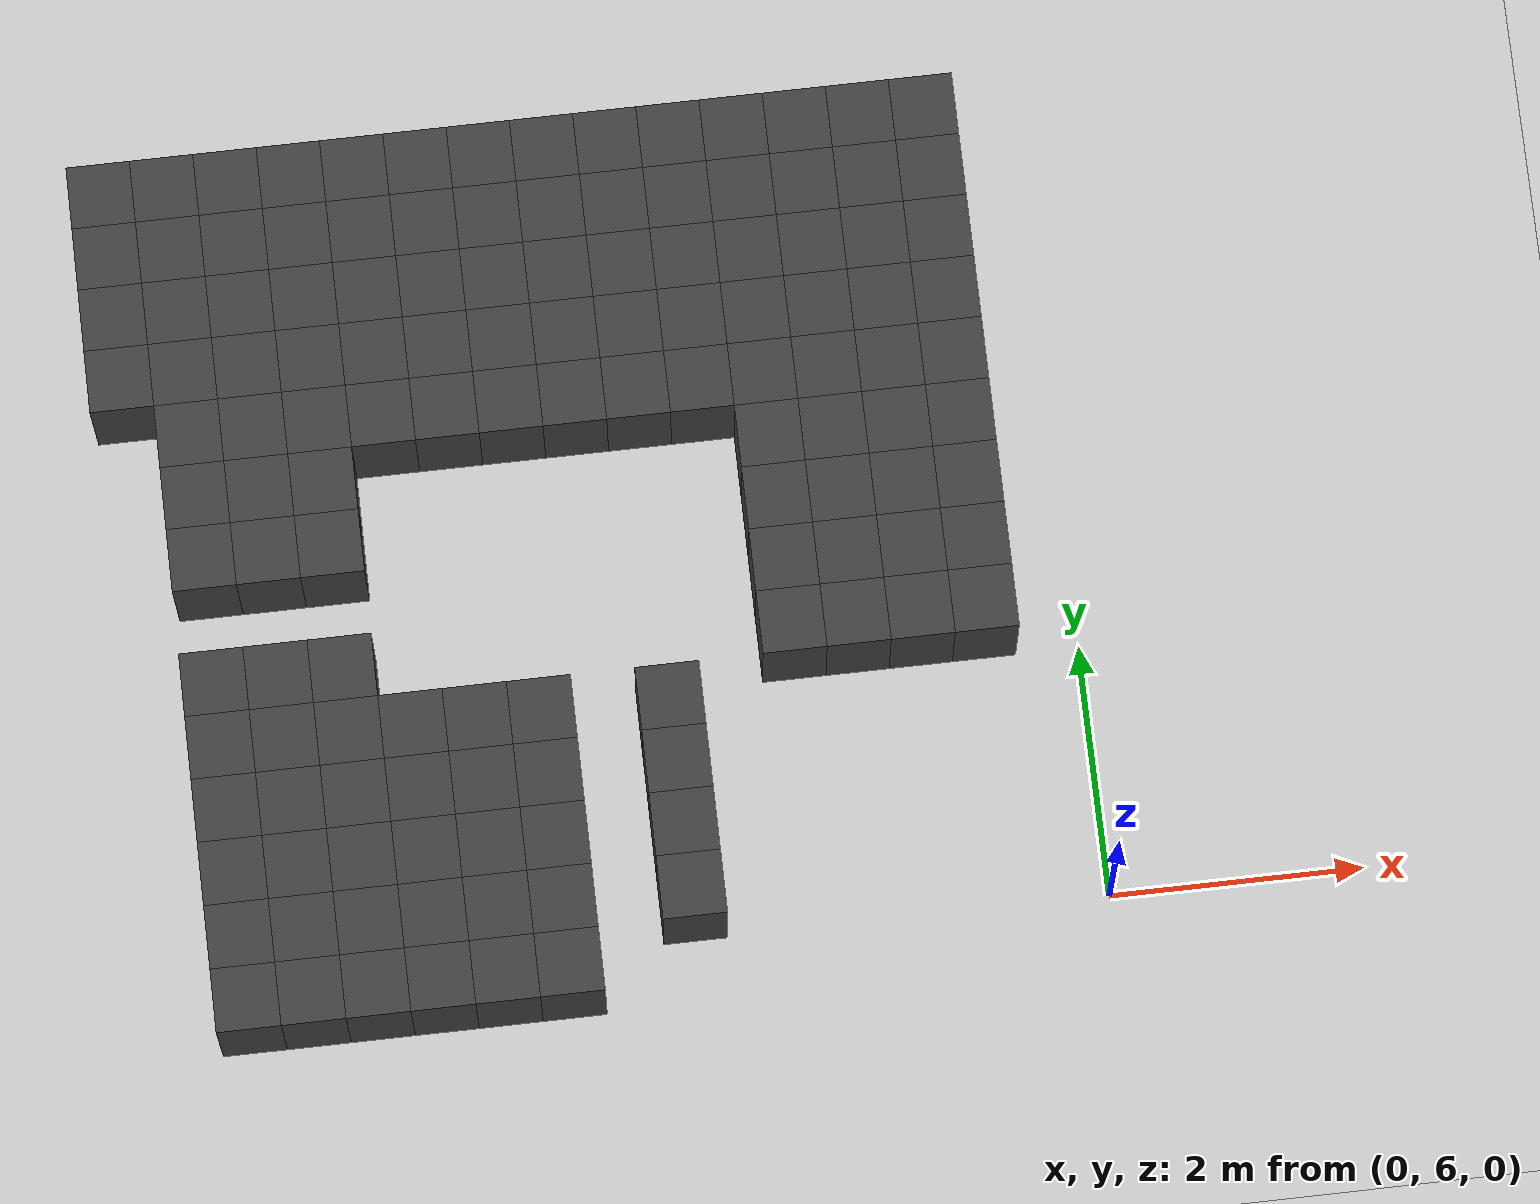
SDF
<sdf version="1.7">
 <world name="map_11515">
  <model name="ground_plane">
   <static>true</static>
   <link name="link">
    <collision name="collision">
     <geometry><plane><normal>0 0 1</normal><size>200 200</size></plane></geometry>
    </collision>
    <visual name="visual">
     <geometry><plane><normal>0 0 1</normal><size>200 200</size></plane></geometry>
     <material><ambient>0.8 0.8 0.8 1</ambient><diffuse>0.8 0.8 0.8 1</diffuse></material>
    </visual>
   </link>
  </model>
  <model name="maze_environment">
   <static>true</static>
   <link name="wall_10">
    <pose>-7.250 12.250 0.500 0 0 0</pose>
    <collision name="col"><geometry><box><size>0.5 0.5 1.0</size></box></geometry></collision>
    <visual name="vis">
     <geometry><box><size>0.5 0.5 1.0</size></box></geometry>
     <material><ambient>0.15 0.15 0.15 1</ambient><diffuse>0.25 0.25 0.25 1</diffuse></material>
    </visual>
   </link>
   <link name="wall_11">
    <pose>-6.750 12.250 0.500 0 0 0</pose>
    <collision name="col"><geometry><box><size>0.5 0.5 1.0</size></box></geometry></collision>
    <visual name="vis">
     <geometry><box><size>0.5 0.5 1.0</size></box></geometry>
     <material><ambient>0.15 0.15 0.15 1</ambient><diffuse>0.25 0.25 0.25 1</diffuse></material>
    </visual>
   </link>
   <link name="wall_12">
    <pose>-6.250 12.250 0.500 0 0 0</pose>
    <collision name="col"><geometry><box><size>0.5 0.5 1.0</size></box></geometry></collision>
    <visual name="vis">
     <geometry><box><size>0.5 0.5 1.0</size></box></geometry>
     <material><ambient>0.15 0.15 0.15 1</ambient><diffuse>0.25 0.25 0.25 1</diffuse></material>
    </visual>
   </link>
   <link name="wall_13">
    <pose>-5.750 12.250 0.500 0 0 0</pose>
    <collision name="col"><geometry><box><size>0.5 0.5 1.0</size></box></geometry></collision>
    <visual name="vis">
     <geometry><box><size>0.5 0.5 1.0</size></box></geometry>
     <material><ambient>0.15 0.15 0.15 1</ambient><diffuse>0.25 0.25 0.25 1</diffuse></material>
    </visual>
   </link>
   <link name="wall_14">
    <pose>-5.250 12.250 0.500 0 0 0</pose>
    <collision name="col"><geometry><box><size>0.5 0.5 1.0</size></box></geometry></collision>
    <visual name="vis">
     <geometry><box><size>0.5 0.5 1.0</size></box></geometry>
     <material><ambient>0.15 0.15 0.15 1</ambient><diffuse>0.25 0.25 0.25 1</diffuse></material>
    </visual>
   </link>
   <link name="wall_15">
    <pose>-4.750 12.250 0.500 0 0 0</pose>
    <collision name="col"><geometry><box><size>0.5 0.5 1.0</size></box></geometry></collision>
    <visual name="vis">
     <geometry><box><size>0.5 0.5 1.0</size></box></geometry>
     <material><ambient>0.15 0.15 0.15 1</ambient><diffuse>0.25 0.25 0.25 1</diffuse></material>
    </visual>
   </link>
   <link name="wall_16">
    <pose>-4.250 12.250 0.500 0 0 0</pose>
    <collision name="col"><geometry><box><size>0.5 0.5 1.0</size></box></geometry></collision>
    <visual name="vis">
     <geometry><box><size>0.5 0.5 1.0</size></box></geometry>
     <material><ambient>0.15 0.15 0.15 1</ambient><diffuse>0.25 0.25 0.25 1</diffuse></material>
    </visual>
   </link>
   <link name="wall_17">
    <pose>-3.750 12.250 0.500 0 0 0</pose>
    <collision name="col"><geometry><box><size>0.5 0.5 1.0</size></box></geometry></collision>
    <visual name="vis">
     <geometry><box><size>0.5 0.5 1.0</size></box></geometry>
     <material><ambient>0.15 0.15 0.15 1</ambient><diffuse>0.25 0.25 0.25 1</diffuse></material>
    </visual>
   </link>
   <link name="wall_18">
    <pose>-3.250 12.250 0.500 0 0 0</pose>
    <collision name="col"><geometry><box><size>0.5 0.5 1.0</size></box></geometry></collision>
    <visual name="vis">
     <geometry><box><size>0.5 0.5 1.0</size></box></geometry>
     <material><ambient>0.15 0.15 0.15 1</ambient><diffuse>0.25 0.25 0.25 1</diffuse></material>
    </visual>
   </link>
   <link name="wall_19">
    <pose>-2.750 12.250 0.500 0 0 0</pose>
    <collision name="col"><geometry><box><size>0.5 0.5 1.0</size></box></geometry></collision>
    <visual name="vis">
     <geometry><box><size>0.5 0.5 1.0</size></box></geometry>
     <material><ambient>0.15 0.15 0.15 1</ambient><diffuse>0.25 0.25 0.25 1</diffuse></material>
    </visual>
   </link>
   <link name="wall_20">
    <pose>-2.250 12.250 0.500 0 0 0</pose>
    <collision name="col"><geometry><box><size>0.5 0.5 1.0</size></box></geometry></collision>
    <visual name="vis">
     <geometry><box><size>0.5 0.5 1.0</size></box></geometry>
     <material><ambient>0.15 0.15 0.15 1</ambient><diffuse>0.25 0.25 0.25 1</diffuse></material>
    </visual>
   </link>
   <link name="wall_21">
    <pose>-1.750 12.250 0.500 0 0 0</pose>
    <collision name="col"><geometry><box><size>0.5 0.5 1.0</size></box></geometry></collision>
    <visual name="vis">
     <geometry><box><size>0.5 0.5 1.0</size></box></geometry>
     <material><ambient>0.15 0.15 0.15 1</ambient><diffuse>0.25 0.25 0.25 1</diffuse></material>
    </visual>
   </link>
   <link name="wall_22">
    <pose>-1.250 12.250 0.500 0 0 0</pose>
    <collision name="col"><geometry><box><size>0.5 0.5 1.0</size></box></geometry></collision>
    <visual name="vis">
     <geometry><box><size>0.5 0.5 1.0</size></box></geometry>
     <material><ambient>0.15 0.15 0.15 1</ambient><diffuse>0.25 0.25 0.25 1</diffuse></material>
    </visual>
   </link>
   <link name="wall_23">
    <pose>-0.750 12.250 0.500 0 0 0</pose>
    <collision name="col"><geometry><box><size>0.5 0.5 1.0</size></box></geometry></collision>
    <visual name="vis">
     <geometry><box><size>0.5 0.5 1.0</size></box></geometry>
     <material><ambient>0.15 0.15 0.15 1</ambient><diffuse>0.25 0.25 0.25 1</diffuse></material>
    </visual>
   </link>
   <link name="wall_57">
    <pose>-7.250 11.750 0.500 0 0 0</pose>
    <collision name="col"><geometry><box><size>0.5 0.5 1.0</size></box></geometry></collision>
    <visual name="vis">
     <geometry><box><size>0.5 0.5 1.0</size></box></geometry>
     <material><ambient>0.15 0.15 0.15 1</ambient><diffuse>0.25 0.25 0.25 1</diffuse></material>
    </visual>
   </link>
   <link name="wall_58">
    <pose>-6.750 11.750 0.500 0 0 0</pose>
    <collision name="col"><geometry><box><size>0.5 0.5 1.0</size></box></geometry></collision>
    <visual name="vis">
     <geometry><box><size>0.5 0.5 1.0</size></box></geometry>
     <material><ambient>0.15 0.15 0.15 1</ambient><diffuse>0.25 0.25 0.25 1</diffuse></material>
    </visual>
   </link>
   <link name="wall_59">
    <pose>-6.250 11.750 0.500 0 0 0</pose>
    <collision name="col"><geometry><box><size>0.5 0.5 1.0</size></box></geometry></collision>
    <visual name="vis">
     <geometry><box><size>0.5 0.5 1.0</size></box></geometry>
     <material><ambient>0.15 0.15 0.15 1</ambient><diffuse>0.25 0.25 0.25 1</diffuse></material>
    </visual>
   </link>
   <link name="wall_60">
    <pose>-5.750 11.750 0.500 0 0 0</pose>
    <collision name="col"><geometry><box><size>0.5 0.5 1.0</size></box></geometry></collision>
    <visual name="vis">
     <geometry><box><size>0.5 0.5 1.0</size></box></geometry>
     <material><ambient>0.15 0.15 0.15 1</ambient><diffuse>0.25 0.25 0.25 1</diffuse></material>
    </visual>
   </link>
   <link name="wall_61">
    <pose>-5.250 11.750 0.500 0 0 0</pose>
    <collision name="col"><geometry><box><size>0.5 0.5 1.0</size></box></geometry></collision>
    <visual name="vis">
     <geometry><box><size>0.5 0.5 1.0</size></box></geometry>
     <material><ambient>0.15 0.15 0.15 1</ambient><diffuse>0.25 0.25 0.25 1</diffuse></material>
    </visual>
   </link>
   <link name="wall_62">
    <pose>-4.750 11.750 0.500 0 0 0</pose>
    <collision name="col"><geometry><box><size>0.5 0.5 1.0</size></box></geometry></collision>
    <visual name="vis">
     <geometry><box><size>0.5 0.5 1.0</size></box></geometry>
     <material><ambient>0.15 0.15 0.15 1</ambient><diffuse>0.25 0.25 0.25 1</diffuse></material>
    </visual>
   </link>
   <link name="wall_63">
    <pose>-4.250 11.750 0.500 0 0 0</pose>
    <collision name="col"><geometry><box><size>0.5 0.5 1.0</size></box></geometry></collision>
    <visual name="vis">
     <geometry><box><size>0.5 0.5 1.0</size></box></geometry>
     <material><ambient>0.15 0.15 0.15 1</ambient><diffuse>0.25 0.25 0.25 1</diffuse></material>
    </visual>
   </link>
   <link name="wall_64">
    <pose>-3.750 11.750 0.500 0 0 0</pose>
    <collision name="col"><geometry><box><size>0.5 0.5 1.0</size></box></geometry></collision>
    <visual name="vis">
     <geometry><box><size>0.5 0.5 1.0</size></box></geometry>
     <material><ambient>0.15 0.15 0.15 1</ambient><diffuse>0.25 0.25 0.25 1</diffuse></material>
    </visual>
   </link>
   <link name="wall_65">
    <pose>-3.250 11.750 0.500 0 0 0</pose>
    <collision name="col"><geometry><box><size>0.5 0.5 1.0</size></box></geometry></collision>
    <visual name="vis">
     <geometry><box><size>0.5 0.5 1.0</size></box></geometry>
     <material><ambient>0.15 0.15 0.15 1</ambient><diffuse>0.25 0.25 0.25 1</diffuse></material>
    </visual>
   </link>
   <link name="wall_66">
    <pose>-2.750 11.750 0.500 0 0 0</pose>
    <collision name="col"><geometry><box><size>0.5 0.5 1.0</size></box></geometry></collision>
    <visual name="vis">
     <geometry><box><size>0.5 0.5 1.0</size></box></geometry>
     <material><ambient>0.15 0.15 0.15 1</ambient><diffuse>0.25 0.25 0.25 1</diffuse></material>
    </visual>
   </link>
   <link name="wall_67">
    <pose>-2.250 11.750 0.500 0 0 0</pose>
    <collision name="col"><geometry><box><size>0.5 0.5 1.0</size></box></geometry></collision>
    <visual name="vis">
     <geometry><box><size>0.5 0.5 1.0</size></box></geometry>
     <material><ambient>0.15 0.15 0.15 1</ambient><diffuse>0.25 0.25 0.25 1</diffuse></material>
    </visual>
   </link>
   <link name="wall_68">
    <pose>-1.750 11.750 0.500 0 0 0</pose>
    <collision name="col"><geometry><box><size>0.5 0.5 1.0</size></box></geometry></collision>
    <visual name="vis">
     <geometry><box><size>0.5 0.5 1.0</size></box></geometry>
     <material><ambient>0.15 0.15 0.15 1</ambient><diffuse>0.25 0.25 0.25 1</diffuse></material>
    </visual>
   </link>
   <link name="wall_69">
    <pose>-1.250 11.750 0.500 0 0 0</pose>
    <collision name="col"><geometry><box><size>0.5 0.5 1.0</size></box></geometry></collision>
    <visual name="vis">
     <geometry><box><size>0.5 0.5 1.0</size></box></geometry>
     <material><ambient>0.15 0.15 0.15 1</ambient><diffuse>0.25 0.25 0.25 1</diffuse></material>
    </visual>
   </link>
   <link name="wall_70">
    <pose>-0.750 11.750 0.500 0 0 0</pose>
    <collision name="col"><geometry><box><size>0.5 0.5 1.0</size></box></geometry></collision>
    <visual name="vis">
     <geometry><box><size>0.5 0.5 1.0</size></box></geometry>
     <material><ambient>0.15 0.15 0.15 1</ambient><diffuse>0.25 0.25 0.25 1</diffuse></material>
    </visual>
   </link>
   <link name="wall_104">
    <pose>-7.250 11.250 0.500 0 0 0</pose>
    <collision name="col"><geometry><box><size>0.5 0.5 1.0</size></box></geometry></collision>
    <visual name="vis">
     <geometry><box><size>0.5 0.5 1.0</size></box></geometry>
     <material><ambient>0.15 0.15 0.15 1</ambient><diffuse>0.25 0.25 0.25 1</diffuse></material>
    </visual>
   </link>
   <link name="wall_105">
    <pose>-6.750 11.250 0.500 0 0 0</pose>
    <collision name="col"><geometry><box><size>0.5 0.5 1.0</size></box></geometry></collision>
    <visual name="vis">
     <geometry><box><size>0.5 0.5 1.0</size></box></geometry>
     <material><ambient>0.15 0.15 0.15 1</ambient><diffuse>0.25 0.25 0.25 1</diffuse></material>
    </visual>
   </link>
   <link name="wall_106">
    <pose>-6.250 11.250 0.500 0 0 0</pose>
    <collision name="col"><geometry><box><size>0.5 0.5 1.0</size></box></geometry></collision>
    <visual name="vis">
     <geometry><box><size>0.5 0.5 1.0</size></box></geometry>
     <material><ambient>0.15 0.15 0.15 1</ambient><diffuse>0.25 0.25 0.25 1</diffuse></material>
    </visual>
   </link>
   <link name="wall_107">
    <pose>-5.750 11.250 0.500 0 0 0</pose>
    <collision name="col"><geometry><box><size>0.5 0.5 1.0</size></box></geometry></collision>
    <visual name="vis">
     <geometry><box><size>0.5 0.5 1.0</size></box></geometry>
     <material><ambient>0.15 0.15 0.15 1</ambient><diffuse>0.25 0.25 0.25 1</diffuse></material>
    </visual>
   </link>
   <link name="wall_108">
    <pose>-5.250 11.250 0.500 0 0 0</pose>
    <collision name="col"><geometry><box><size>0.5 0.5 1.0</size></box></geometry></collision>
    <visual name="vis">
     <geometry><box><size>0.5 0.5 1.0</size></box></geometry>
     <material><ambient>0.15 0.15 0.15 1</ambient><diffuse>0.25 0.25 0.25 1</diffuse></material>
    </visual>
   </link>
   <link name="wall_109">
    <pose>-4.750 11.250 0.500 0 0 0</pose>
    <collision name="col"><geometry><box><size>0.5 0.5 1.0</size></box></geometry></collision>
    <visual name="vis">
     <geometry><box><size>0.5 0.5 1.0</size></box></geometry>
     <material><ambient>0.15 0.15 0.15 1</ambient><diffuse>0.25 0.25 0.25 1</diffuse></material>
    </visual>
   </link>
   <link name="wall_110">
    <pose>-4.250 11.250 0.500 0 0 0</pose>
    <collision name="col"><geometry><box><size>0.5 0.5 1.0</size></box></geometry></collision>
    <visual name="vis">
     <geometry><box><size>0.5 0.5 1.0</size></box></geometry>
     <material><ambient>0.15 0.15 0.15 1</ambient><diffuse>0.25 0.25 0.25 1</diffuse></material>
    </visual>
   </link>
   <link name="wall_111">
    <pose>-3.750 11.250 0.500 0 0 0</pose>
    <collision name="col"><geometry><box><size>0.5 0.5 1.0</size></box></geometry></collision>
    <visual name="vis">
     <geometry><box><size>0.5 0.5 1.0</size></box></geometry>
     <material><ambient>0.15 0.15 0.15 1</ambient><diffuse>0.25 0.25 0.25 1</diffuse></material>
    </visual>
   </link>
   <link name="wall_112">
    <pose>-3.250 11.250 0.500 0 0 0</pose>
    <collision name="col"><geometry><box><size>0.5 0.5 1.0</size></box></geometry></collision>
    <visual name="vis">
     <geometry><box><size>0.5 0.5 1.0</size></box></geometry>
     <material><ambient>0.15 0.15 0.15 1</ambient><diffuse>0.25 0.25 0.25 1</diffuse></material>
    </visual>
   </link>
   <link name="wall_113">
    <pose>-2.750 11.250 0.500 0 0 0</pose>
    <collision name="col"><geometry><box><size>0.5 0.5 1.0</size></box></geometry></collision>
    <visual name="vis">
     <geometry><box><size>0.5 0.5 1.0</size></box></geometry>
     <material><ambient>0.15 0.15 0.15 1</ambient><diffuse>0.25 0.25 0.25 1</diffuse></material>
    </visual>
   </link>
   <link name="wall_114">
    <pose>-2.250 11.250 0.500 0 0 0</pose>
    <collision name="col"><geometry><box><size>0.5 0.5 1.0</size></box></geometry></collision>
    <visual name="vis">
     <geometry><box><size>0.5 0.5 1.0</size></box></geometry>
     <material><ambient>0.15 0.15 0.15 1</ambient><diffuse>0.25 0.25 0.25 1</diffuse></material>
    </visual>
   </link>
   <link name="wall_115">
    <pose>-1.750 11.250 0.500 0 0 0</pose>
    <collision name="col"><geometry><box><size>0.5 0.5 1.0</size></box></geometry></collision>
    <visual name="vis">
     <geometry><box><size>0.5 0.5 1.0</size></box></geometry>
     <material><ambient>0.15 0.15 0.15 1</ambient><diffuse>0.25 0.25 0.25 1</diffuse></material>
    </visual>
   </link>
   <link name="wall_116">
    <pose>-1.250 11.250 0.500 0 0 0</pose>
    <collision name="col"><geometry><box><size>0.5 0.5 1.0</size></box></geometry></collision>
    <visual name="vis">
     <geometry><box><size>0.5 0.5 1.0</size></box></geometry>
     <material><ambient>0.15 0.15 0.15 1</ambient><diffuse>0.25 0.25 0.25 1</diffuse></material>
    </visual>
   </link>
   <link name="wall_117">
    <pose>-0.750 11.250 0.500 0 0 0</pose>
    <collision name="col"><geometry><box><size>0.5 0.5 1.0</size></box></geometry></collision>
    <visual name="vis">
     <geometry><box><size>0.5 0.5 1.0</size></box></geometry>
     <material><ambient>0.15 0.15 0.15 1</ambient><diffuse>0.25 0.25 0.25 1</diffuse></material>
    </visual>
   </link>
   <link name="wall_151">
    <pose>-7.250 10.750 0.500 0 0 0</pose>
    <collision name="col"><geometry><box><size>0.5 0.5 1.0</size></box></geometry></collision>
    <visual name="vis">
     <geometry><box><size>0.5 0.5 1.0</size></box></geometry>
     <material><ambient>0.15 0.15 0.15 1</ambient><diffuse>0.25 0.25 0.25 1</diffuse></material>
    </visual>
   </link>
   <link name="wall_152">
    <pose>-6.750 10.750 0.500 0 0 0</pose>
    <collision name="col"><geometry><box><size>0.5 0.5 1.0</size></box></geometry></collision>
    <visual name="vis">
     <geometry><box><size>0.5 0.5 1.0</size></box></geometry>
     <material><ambient>0.15 0.15 0.15 1</ambient><diffuse>0.25 0.25 0.25 1</diffuse></material>
    </visual>
   </link>
   <link name="wall_153">
    <pose>-6.250 10.750 0.500 0 0 0</pose>
    <collision name="col"><geometry><box><size>0.5 0.5 1.0</size></box></geometry></collision>
    <visual name="vis">
     <geometry><box><size>0.5 0.5 1.0</size></box></geometry>
     <material><ambient>0.15 0.15 0.15 1</ambient><diffuse>0.25 0.25 0.25 1</diffuse></material>
    </visual>
   </link>
   <link name="wall_154">
    <pose>-5.750 10.750 0.500 0 0 0</pose>
    <collision name="col"><geometry><box><size>0.5 0.5 1.0</size></box></geometry></collision>
    <visual name="vis">
     <geometry><box><size>0.5 0.5 1.0</size></box></geometry>
     <material><ambient>0.15 0.15 0.15 1</ambient><diffuse>0.25 0.25 0.25 1</diffuse></material>
    </visual>
   </link>
   <link name="wall_155">
    <pose>-5.250 10.750 0.500 0 0 0</pose>
    <collision name="col"><geometry><box><size>0.5 0.5 1.0</size></box></geometry></collision>
    <visual name="vis">
     <geometry><box><size>0.5 0.5 1.0</size></box></geometry>
     <material><ambient>0.15 0.15 0.15 1</ambient><diffuse>0.25 0.25 0.25 1</diffuse></material>
    </visual>
   </link>
   <link name="wall_156">
    <pose>-4.750 10.750 0.500 0 0 0</pose>
    <collision name="col"><geometry><box><size>0.5 0.5 1.0</size></box></geometry></collision>
    <visual name="vis">
     <geometry><box><size>0.5 0.5 1.0</size></box></geometry>
     <material><ambient>0.15 0.15 0.15 1</ambient><diffuse>0.25 0.25 0.25 1</diffuse></material>
    </visual>
   </link>
   <link name="wall_157">
    <pose>-4.250 10.750 0.500 0 0 0</pose>
    <collision name="col"><geometry><box><size>0.5 0.5 1.0</size></box></geometry></collision>
    <visual name="vis">
     <geometry><box><size>0.5 0.5 1.0</size></box></geometry>
     <material><ambient>0.15 0.15 0.15 1</ambient><diffuse>0.25 0.25 0.25 1</diffuse></material>
    </visual>
   </link>
   <link name="wall_158">
    <pose>-3.750 10.750 0.500 0 0 0</pose>
    <collision name="col"><geometry><box><size>0.5 0.5 1.0</size></box></geometry></collision>
    <visual name="vis">
     <geometry><box><size>0.5 0.5 1.0</size></box></geometry>
     <material><ambient>0.15 0.15 0.15 1</ambient><diffuse>0.25 0.25 0.25 1</diffuse></material>
    </visual>
   </link>
   <link name="wall_159">
    <pose>-3.250 10.750 0.500 0 0 0</pose>
    <collision name="col"><geometry><box><size>0.5 0.5 1.0</size></box></geometry></collision>
    <visual name="vis">
     <geometry><box><size>0.5 0.5 1.0</size></box></geometry>
     <material><ambient>0.15 0.15 0.15 1</ambient><diffuse>0.25 0.25 0.25 1</diffuse></material>
    </visual>
   </link>
   <link name="wall_160">
    <pose>-2.750 10.750 0.500 0 0 0</pose>
    <collision name="col"><geometry><box><size>0.5 0.5 1.0</size></box></geometry></collision>
    <visual name="vis">
     <geometry><box><size>0.5 0.5 1.0</size></box></geometry>
     <material><ambient>0.15 0.15 0.15 1</ambient><diffuse>0.25 0.25 0.25 1</diffuse></material>
    </visual>
   </link>
   <link name="wall_161">
    <pose>-2.250 10.750 0.500 0 0 0</pose>
    <collision name="col"><geometry><box><size>0.5 0.5 1.0</size></box></geometry></collision>
    <visual name="vis">
     <geometry><box><size>0.5 0.5 1.0</size></box></geometry>
     <material><ambient>0.15 0.15 0.15 1</ambient><diffuse>0.25 0.25 0.25 1</diffuse></material>
    </visual>
   </link>
   <link name="wall_162">
    <pose>-1.750 10.750 0.500 0 0 0</pose>
    <collision name="col"><geometry><box><size>0.5 0.5 1.0</size></box></geometry></collision>
    <visual name="vis">
     <geometry><box><size>0.5 0.5 1.0</size></box></geometry>
     <material><ambient>0.15 0.15 0.15 1</ambient><diffuse>0.25 0.25 0.25 1</diffuse></material>
    </visual>
   </link>
   <link name="wall_163">
    <pose>-1.250 10.750 0.500 0 0 0</pose>
    <collision name="col"><geometry><box><size>0.5 0.5 1.0</size></box></geometry></collision>
    <visual name="vis">
     <geometry><box><size>0.5 0.5 1.0</size></box></geometry>
     <material><ambient>0.15 0.15 0.15 1</ambient><diffuse>0.25 0.25 0.25 1</diffuse></material>
    </visual>
   </link>
   <link name="wall_164">
    <pose>-0.750 10.750 0.500 0 0 0</pose>
    <collision name="col"><geometry><box><size>0.5 0.5 1.0</size></box></geometry></collision>
    <visual name="vis">
     <geometry><box><size>0.5 0.5 1.0</size></box></geometry>
     <material><ambient>0.15 0.15 0.15 1</ambient><diffuse>0.25 0.25 0.25 1</diffuse></material>
    </visual>
   </link>
   <link name="wall_201">
    <pose>-6.750 10.250 0.500 0 0 0</pose>
    <collision name="col"><geometry><box><size>0.5 0.5 1.0</size></box></geometry></collision>
    <visual name="vis">
     <geometry><box><size>0.5 0.5 1.0</size></box></geometry>
     <material><ambient>0.15 0.15 0.15 1</ambient><diffuse>0.25 0.25 0.25 1</diffuse></material>
    </visual>
   </link>
   <link name="wall_202">
    <pose>-6.250 10.250 0.500 0 0 0</pose>
    <collision name="col"><geometry><box><size>0.5 0.5 1.0</size></box></geometry></collision>
    <visual name="vis">
     <geometry><box><size>0.5 0.5 1.0</size></box></geometry>
     <material><ambient>0.15 0.15 0.15 1</ambient><diffuse>0.25 0.25 0.25 1</diffuse></material>
    </visual>
   </link>
   <link name="wall_203">
    <pose>-5.750 10.250 0.500 0 0 0</pose>
    <collision name="col"><geometry><box><size>0.5 0.5 1.0</size></box></geometry></collision>
    <visual name="vis">
     <geometry><box><size>0.5 0.5 1.0</size></box></geometry>
     <material><ambient>0.15 0.15 0.15 1</ambient><diffuse>0.25 0.25 0.25 1</diffuse></material>
    </visual>
   </link>
   <link name="wall_204">
    <pose>-5.250 10.250 0.500 0 0 0</pose>
    <collision name="col"><geometry><box><size>0.5 0.5 1.0</size></box></geometry></collision>
    <visual name="vis">
     <geometry><box><size>0.5 0.5 1.0</size></box></geometry>
     <material><ambient>0.15 0.15 0.15 1</ambient><diffuse>0.25 0.25 0.25 1</diffuse></material>
    </visual>
   </link>
   <link name="wall_205">
    <pose>-4.750 10.250 0.500 0 0 0</pose>
    <collision name="col"><geometry><box><size>0.5 0.5 1.0</size></box></geometry></collision>
    <visual name="vis">
     <geometry><box><size>0.5 0.5 1.0</size></box></geometry>
     <material><ambient>0.15 0.15 0.15 1</ambient><diffuse>0.25 0.25 0.25 1</diffuse></material>
    </visual>
   </link>
   <link name="wall_206">
    <pose>-4.250 10.250 0.500 0 0 0</pose>
    <collision name="col"><geometry><box><size>0.5 0.5 1.0</size></box></geometry></collision>
    <visual name="vis">
     <geometry><box><size>0.5 0.5 1.0</size></box></geometry>
     <material><ambient>0.15 0.15 0.15 1</ambient><diffuse>0.25 0.25 0.25 1</diffuse></material>
    </visual>
   </link>
   <link name="wall_207">
    <pose>-3.750 10.250 0.500 0 0 0</pose>
    <collision name="col"><geometry><box><size>0.5 0.5 1.0</size></box></geometry></collision>
    <visual name="vis">
     <geometry><box><size>0.5 0.5 1.0</size></box></geometry>
     <material><ambient>0.15 0.15 0.15 1</ambient><diffuse>0.25 0.25 0.25 1</diffuse></material>
    </visual>
   </link>
   <link name="wall_208">
    <pose>-3.250 10.250 0.500 0 0 0</pose>
    <collision name="col"><geometry><box><size>0.5 0.5 1.0</size></box></geometry></collision>
    <visual name="vis">
     <geometry><box><size>0.5 0.5 1.0</size></box></geometry>
     <material><ambient>0.15 0.15 0.15 1</ambient><diffuse>0.25 0.25 0.25 1</diffuse></material>
    </visual>
   </link>
   <link name="wall_209">
    <pose>-2.750 10.250 0.500 0 0 0</pose>
    <collision name="col"><geometry><box><size>0.5 0.5 1.0</size></box></geometry></collision>
    <visual name="vis">
     <geometry><box><size>0.5 0.5 1.0</size></box></geometry>
     <material><ambient>0.15 0.15 0.15 1</ambient><diffuse>0.25 0.25 0.25 1</diffuse></material>
    </visual>
   </link>
   <link name="wall_210">
    <pose>-2.250 10.250 0.500 0 0 0</pose>
    <collision name="col"><geometry><box><size>0.5 0.5 1.0</size></box></geometry></collision>
    <visual name="vis">
     <geometry><box><size>0.5 0.5 1.0</size></box></geometry>
     <material><ambient>0.15 0.15 0.15 1</ambient><diffuse>0.25 0.25 0.25 1</diffuse></material>
    </visual>
   </link>
   <link name="wall_211">
    <pose>-1.750 10.250 0.500 0 0 0</pose>
    <collision name="col"><geometry><box><size>0.5 0.5 1.0</size></box></geometry></collision>
    <visual name="vis">
     <geometry><box><size>0.5 0.5 1.0</size></box></geometry>
     <material><ambient>0.15 0.15 0.15 1</ambient><diffuse>0.25 0.25 0.25 1</diffuse></material>
    </visual>
   </link>
   <link name="wall_212">
    <pose>-1.250 10.250 0.500 0 0 0</pose>
    <collision name="col"><geometry><box><size>0.5 0.5 1.0</size></box></geometry></collision>
    <visual name="vis">
     <geometry><box><size>0.5 0.5 1.0</size></box></geometry>
     <material><ambient>0.15 0.15 0.15 1</ambient><diffuse>0.25 0.25 0.25 1</diffuse></material>
    </visual>
   </link>
   <link name="wall_213">
    <pose>-0.750 10.250 0.500 0 0 0</pose>
    <collision name="col"><geometry><box><size>0.5 0.5 1.0</size></box></geometry></collision>
    <visual name="vis">
     <geometry><box><size>0.5 0.5 1.0</size></box></geometry>
     <material><ambient>0.15 0.15 0.15 1</ambient><diffuse>0.25 0.25 0.25 1</diffuse></material>
    </visual>
   </link>
   <link name="wall_250">
    <pose>-6.750 9.750 0.500 0 0 0</pose>
    <collision name="col"><geometry><box><size>0.5 0.5 1.0</size></box></geometry></collision>
    <visual name="vis">
     <geometry><box><size>0.5 0.5 1.0</size></box></geometry>
     <material><ambient>0.15 0.15 0.15 1</ambient><diffuse>0.25 0.25 0.25 1</diffuse></material>
    </visual>
   </link>
   <link name="wall_251">
    <pose>-6.250 9.750 0.500 0 0 0</pose>
    <collision name="col"><geometry><box><size>0.5 0.5 1.0</size></box></geometry></collision>
    <visual name="vis">
     <geometry><box><size>0.5 0.5 1.0</size></box></geometry>
     <material><ambient>0.15 0.15 0.15 1</ambient><diffuse>0.25 0.25 0.25 1</diffuse></material>
    </visual>
   </link>
   <link name="wall_252">
    <pose>-5.750 9.750 0.500 0 0 0</pose>
    <collision name="col"><geometry><box><size>0.5 0.5 1.0</size></box></geometry></collision>
    <visual name="vis">
     <geometry><box><size>0.5 0.5 1.0</size></box></geometry>
     <material><ambient>0.15 0.15 0.15 1</ambient><diffuse>0.25 0.25 0.25 1</diffuse></material>
    </visual>
   </link>
   <link name="wall_253">
    <pose>-2.250 9.750 0.500 0 0 0</pose>
    <collision name="col"><geometry><box><size>0.5 0.5 1.0</size></box></geometry></collision>
    <visual name="vis">
     <geometry><box><size>0.5 0.5 1.0</size></box></geometry>
     <material><ambient>0.15 0.15 0.15 1</ambient><diffuse>0.25 0.25 0.25 1</diffuse></material>
    </visual>
   </link>
   <link name="wall_254">
    <pose>-1.750 9.750 0.500 0 0 0</pose>
    <collision name="col"><geometry><box><size>0.5 0.5 1.0</size></box></geometry></collision>
    <visual name="vis">
     <geometry><box><size>0.5 0.5 1.0</size></box></geometry>
     <material><ambient>0.15 0.15 0.15 1</ambient><diffuse>0.25 0.25 0.25 1</diffuse></material>
    </visual>
   </link>
   <link name="wall_255">
    <pose>-1.250 9.750 0.500 0 0 0</pose>
    <collision name="col"><geometry><box><size>0.5 0.5 1.0</size></box></geometry></collision>
    <visual name="vis">
     <geometry><box><size>0.5 0.5 1.0</size></box></geometry>
     <material><ambient>0.15 0.15 0.15 1</ambient><diffuse>0.25 0.25 0.25 1</diffuse></material>
    </visual>
   </link>
   <link name="wall_256">
    <pose>-0.750 9.750 0.500 0 0 0</pose>
    <collision name="col"><geometry><box><size>0.5 0.5 1.0</size></box></geometry></collision>
    <visual name="vis">
     <geometry><box><size>0.5 0.5 1.0</size></box></geometry>
     <material><ambient>0.15 0.15 0.15 1</ambient><diffuse>0.25 0.25 0.25 1</diffuse></material>
    </visual>
   </link>
   <link name="wall_293">
    <pose>-6.750 9.250 0.500 0 0 0</pose>
    <collision name="col"><geometry><box><size>0.5 0.5 1.0</size></box></geometry></collision>
    <visual name="vis">
     <geometry><box><size>0.5 0.5 1.0</size></box></geometry>
     <material><ambient>0.15 0.15 0.15 1</ambient><diffuse>0.25 0.25 0.25 1</diffuse></material>
    </visual>
   </link>
   <link name="wall_294">
    <pose>-6.250 9.250 0.500 0 0 0</pose>
    <collision name="col"><geometry><box><size>0.5 0.5 1.0</size></box></geometry></collision>
    <visual name="vis">
     <geometry><box><size>0.5 0.5 1.0</size></box></geometry>
     <material><ambient>0.15 0.15 0.15 1</ambient><diffuse>0.25 0.25 0.25 1</diffuse></material>
    </visual>
   </link>
   <link name="wall_295">
    <pose>-5.750 9.250 0.500 0 0 0</pose>
    <collision name="col"><geometry><box><size>0.5 0.5 1.0</size></box></geometry></collision>
    <visual name="vis">
     <geometry><box><size>0.5 0.5 1.0</size></box></geometry>
     <material><ambient>0.15 0.15 0.15 1</ambient><diffuse>0.25 0.25 0.25 1</diffuse></material>
    </visual>
   </link>
   <link name="wall_296">
    <pose>-2.250 9.250 0.500 0 0 0</pose>
    <collision name="col"><geometry><box><size>0.5 0.5 1.0</size></box></geometry></collision>
    <visual name="vis">
     <geometry><box><size>0.5 0.5 1.0</size></box></geometry>
     <material><ambient>0.15 0.15 0.15 1</ambient><diffuse>0.25 0.25 0.25 1</diffuse></material>
    </visual>
   </link>
   <link name="wall_297">
    <pose>-1.750 9.250 0.500 0 0 0</pose>
    <collision name="col"><geometry><box><size>0.5 0.5 1.0</size></box></geometry></collision>
    <visual name="vis">
     <geometry><box><size>0.5 0.5 1.0</size></box></geometry>
     <material><ambient>0.15 0.15 0.15 1</ambient><diffuse>0.25 0.25 0.25 1</diffuse></material>
    </visual>
   </link>
   <link name="wall_298">
    <pose>-1.250 9.250 0.500 0 0 0</pose>
    <collision name="col"><geometry><box><size>0.5 0.5 1.0</size></box></geometry></collision>
    <visual name="vis">
     <geometry><box><size>0.5 0.5 1.0</size></box></geometry>
     <material><ambient>0.15 0.15 0.15 1</ambient><diffuse>0.25 0.25 0.25 1</diffuse></material>
    </visual>
   </link>
   <link name="wall_299">
    <pose>-0.750 9.250 0.500 0 0 0</pose>
    <collision name="col"><geometry><box><size>0.5 0.5 1.0</size></box></geometry></collision>
    <visual name="vis">
     <geometry><box><size>0.5 0.5 1.0</size></box></geometry>
     <material><ambient>0.15 0.15 0.15 1</ambient><diffuse>0.25 0.25 0.25 1</diffuse></material>
    </visual>
   </link>
   <link name="wall_328">
    <pose>-2.250 8.750 0.500 0 0 0</pose>
    <collision name="col"><geometry><box><size>0.5 0.5 1.0</size></box></geometry></collision>
    <visual name="vis">
     <geometry><box><size>0.5 0.5 1.0</size></box></geometry>
     <material><ambient>0.15 0.15 0.15 1</ambient><diffuse>0.25 0.25 0.25 1</diffuse></material>
    </visual>
   </link>
   <link name="wall_329">
    <pose>-1.750 8.750 0.500 0 0 0</pose>
    <collision name="col"><geometry><box><size>0.5 0.5 1.0</size></box></geometry></collision>
    <visual name="vis">
     <geometry><box><size>0.5 0.5 1.0</size></box></geometry>
     <material><ambient>0.15 0.15 0.15 1</ambient><diffuse>0.25 0.25 0.25 1</diffuse></material>
    </visual>
   </link>
   <link name="wall_330">
    <pose>-1.250 8.750 0.500 0 0 0</pose>
    <collision name="col"><geometry><box><size>0.5 0.5 1.0</size></box></geometry></collision>
    <visual name="vis">
     <geometry><box><size>0.5 0.5 1.0</size></box></geometry>
     <material><ambient>0.15 0.15 0.15 1</ambient><diffuse>0.25 0.25 0.25 1</diffuse></material>
    </visual>
   </link>
   <link name="wall_331">
    <pose>-0.750 8.750 0.500 0 0 0</pose>
    <collision name="col"><geometry><box><size>0.5 0.5 1.0</size></box></geometry></collision>
    <visual name="vis">
     <geometry><box><size>0.5 0.5 1.0</size></box></geometry>
     <material><ambient>0.15 0.15 0.15 1</ambient><diffuse>0.25 0.25 0.25 1</diffuse></material>
    </visual>
   </link>
   <link name="wall_365">
    <pose>-6.750 8.250 0.500 0 0 0</pose>
    <collision name="col"><geometry><box><size>0.5 0.5 1.0</size></box></geometry></collision>
    <visual name="vis">
     <geometry><box><size>0.5 0.5 1.0</size></box></geometry>
     <material><ambient>0.15 0.15 0.15 1</ambient><diffuse>0.25 0.25 0.25 1</diffuse></material>
    </visual>
   </link>
   <link name="wall_366">
    <pose>-6.250 8.250 0.500 0 0 0</pose>
    <collision name="col"><geometry><box><size>0.5 0.5 1.0</size></box></geometry></collision>
    <visual name="vis">
     <geometry><box><size>0.5 0.5 1.0</size></box></geometry>
     <material><ambient>0.15 0.15 0.15 1</ambient><diffuse>0.25 0.25 0.25 1</diffuse></material>
    </visual>
   </link>
   <link name="wall_367">
    <pose>-5.750 8.250 0.500 0 0 0</pose>
    <collision name="col"><geometry><box><size>0.5 0.5 1.0</size></box></geometry></collision>
    <visual name="vis">
     <geometry><box><size>0.5 0.5 1.0</size></box></geometry>
     <material><ambient>0.15 0.15 0.15 1</ambient><diffuse>0.25 0.25 0.25 1</diffuse></material>
    </visual>
   </link>
   <link name="wall_368">
    <pose>-2.250 8.250 0.500 0 0 0</pose>
    <collision name="col"><geometry><box><size>0.5 0.5 1.0</size></box></geometry></collision>
    <visual name="vis">
     <geometry><box><size>0.5 0.5 1.0</size></box></geometry>
     <material><ambient>0.15 0.15 0.15 1</ambient><diffuse>0.25 0.25 0.25 1</diffuse></material>
    </visual>
   </link>
   <link name="wall_369">
    <pose>-1.750 8.250 0.500 0 0 0</pose>
    <collision name="col"><geometry><box><size>0.5 0.5 1.0</size></box></geometry></collision>
    <visual name="vis">
     <geometry><box><size>0.5 0.5 1.0</size></box></geometry>
     <material><ambient>0.15 0.15 0.15 1</ambient><diffuse>0.25 0.25 0.25 1</diffuse></material>
    </visual>
   </link>
   <link name="wall_370">
    <pose>-1.250 8.250 0.500 0 0 0</pose>
    <collision name="col"><geometry><box><size>0.5 0.5 1.0</size></box></geometry></collision>
    <visual name="vis">
     <geometry><box><size>0.5 0.5 1.0</size></box></geometry>
     <material><ambient>0.15 0.15 0.15 1</ambient><diffuse>0.25 0.25 0.25 1</diffuse></material>
    </visual>
   </link>
   <link name="wall_371">
    <pose>-0.750 8.250 0.500 0 0 0</pose>
    <collision name="col"><geometry><box><size>0.5 0.5 1.0</size></box></geometry></collision>
    <visual name="vis">
     <geometry><box><size>0.5 0.5 1.0</size></box></geometry>
     <material><ambient>0.15 0.15 0.15 1</ambient><diffuse>0.25 0.25 0.25 1</diffuse></material>
    </visual>
   </link>
   <link name="wall_405">
    <pose>-6.750 7.750 0.500 0 0 0</pose>
    <collision name="col"><geometry><box><size>0.5 0.5 1.0</size></box></geometry></collision>
    <visual name="vis">
     <geometry><box><size>0.5 0.5 1.0</size></box></geometry>
     <material><ambient>0.15 0.15 0.15 1</ambient><diffuse>0.25 0.25 0.25 1</diffuse></material>
    </visual>
   </link>
   <link name="wall_406">
    <pose>-6.250 7.750 0.500 0 0 0</pose>
    <collision name="col"><geometry><box><size>0.5 0.5 1.0</size></box></geometry></collision>
    <visual name="vis">
     <geometry><box><size>0.5 0.5 1.0</size></box></geometry>
     <material><ambient>0.15 0.15 0.15 1</ambient><diffuse>0.25 0.25 0.25 1</diffuse></material>
    </visual>
   </link>
   <link name="wall_407">
    <pose>-5.750 7.750 0.500 0 0 0</pose>
    <collision name="col"><geometry><box><size>0.5 0.5 1.0</size></box></geometry></collision>
    <visual name="vis">
     <geometry><box><size>0.5 0.5 1.0</size></box></geometry>
     <material><ambient>0.15 0.15 0.15 1</ambient><diffuse>0.25 0.25 0.25 1</diffuse></material>
    </visual>
   </link>
   <link name="wall_408">
    <pose>-5.250 7.750 0.500 0 0 0</pose>
    <collision name="col"><geometry><box><size>0.5 0.5 1.0</size></box></geometry></collision>
    <visual name="vis">
     <geometry><box><size>0.5 0.5 1.0</size></box></geometry>
     <material><ambient>0.15 0.15 0.15 1</ambient><diffuse>0.25 0.25 0.25 1</diffuse></material>
    </visual>
   </link>
   <link name="wall_409">
    <pose>-4.750 7.750 0.500 0 0 0</pose>
    <collision name="col"><geometry><box><size>0.5 0.5 1.0</size></box></geometry></collision>
    <visual name="vis">
     <geometry><box><size>0.5 0.5 1.0</size></box></geometry>
     <material><ambient>0.15 0.15 0.15 1</ambient><diffuse>0.25 0.25 0.25 1</diffuse></material>
    </visual>
   </link>
   <link name="wall_410">
    <pose>-4.250 7.750 0.500 0 0 0</pose>
    <collision name="col"><geometry><box><size>0.5 0.5 1.0</size></box></geometry></collision>
    <visual name="vis">
     <geometry><box><size>0.5 0.5 1.0</size></box></geometry>
     <material><ambient>0.15 0.15 0.15 1</ambient><diffuse>0.25 0.25 0.25 1</diffuse></material>
    </visual>
   </link>
   <link name="wall_411">
    <pose>-3.250 7.750 0.500 0 0 0</pose>
    <collision name="col"><geometry><box><size>0.5 0.5 1.0</size></box></geometry></collision>
    <visual name="vis">
     <geometry><box><size>0.5 0.5 1.0</size></box></geometry>
     <material><ambient>0.15 0.15 0.15 1</ambient><diffuse>0.25 0.25 0.25 1</diffuse></material>
    </visual>
   </link>
   <link name="wall_443">
    <pose>-6.750 7.250 0.500 0 0 0</pose>
    <collision name="col"><geometry><box><size>0.5 0.5 1.0</size></box></geometry></collision>
    <visual name="vis">
     <geometry><box><size>0.5 0.5 1.0</size></box></geometry>
     <material><ambient>0.15 0.15 0.15 1</ambient><diffuse>0.25 0.25 0.25 1</diffuse></material>
    </visual>
   </link>
   <link name="wall_444">
    <pose>-6.250 7.250 0.500 0 0 0</pose>
    <collision name="col"><geometry><box><size>0.5 0.5 1.0</size></box></geometry></collision>
    <visual name="vis">
     <geometry><box><size>0.5 0.5 1.0</size></box></geometry>
     <material><ambient>0.15 0.15 0.15 1</ambient><diffuse>0.25 0.25 0.25 1</diffuse></material>
    </visual>
   </link>
   <link name="wall_445">
    <pose>-5.750 7.250 0.500 0 0 0</pose>
    <collision name="col"><geometry><box><size>0.5 0.5 1.0</size></box></geometry></collision>
    <visual name="vis">
     <geometry><box><size>0.5 0.5 1.0</size></box></geometry>
     <material><ambient>0.15 0.15 0.15 1</ambient><diffuse>0.25 0.25 0.25 1</diffuse></material>
    </visual>
   </link>
   <link name="wall_446">
    <pose>-5.250 7.250 0.500 0 0 0</pose>
    <collision name="col"><geometry><box><size>0.5 0.5 1.0</size></box></geometry></collision>
    <visual name="vis">
     <geometry><box><size>0.5 0.5 1.0</size></box></geometry>
     <material><ambient>0.15 0.15 0.15 1</ambient><diffuse>0.25 0.25 0.25 1</diffuse></material>
    </visual>
   </link>
   <link name="wall_447">
    <pose>-4.750 7.250 0.500 0 0 0</pose>
    <collision name="col"><geometry><box><size>0.5 0.5 1.0</size></box></geometry></collision>
    <visual name="vis">
     <geometry><box><size>0.5 0.5 1.0</size></box></geometry>
     <material><ambient>0.15 0.15 0.15 1</ambient><diffuse>0.25 0.25 0.25 1</diffuse></material>
    </visual>
   </link>
   <link name="wall_448">
    <pose>-4.250 7.250 0.500 0 0 0</pose>
    <collision name="col"><geometry><box><size>0.5 0.5 1.0</size></box></geometry></collision>
    <visual name="vis">
     <geometry><box><size>0.5 0.5 1.0</size></box></geometry>
     <material><ambient>0.15 0.15 0.15 1</ambient><diffuse>0.25 0.25 0.25 1</diffuse></material>
    </visual>
   </link>
   <link name="wall_449">
    <pose>-3.250 7.250 0.500 0 0 0</pose>
    <collision name="col"><geometry><box><size>0.5 0.5 1.0</size></box></geometry></collision>
    <visual name="vis">
     <geometry><box><size>0.5 0.5 1.0</size></box></geometry>
     <material><ambient>0.15 0.15 0.15 1</ambient><diffuse>0.25 0.25 0.25 1</diffuse></material>
    </visual>
   </link>
   <link name="wall_482">
    <pose>-6.750 6.750 0.500 0 0 0</pose>
    <collision name="col"><geometry><box><size>0.5 0.5 1.0</size></box></geometry></collision>
    <visual name="vis">
     <geometry><box><size>0.5 0.5 1.0</size></box></geometry>
     <material><ambient>0.15 0.15 0.15 1</ambient><diffuse>0.25 0.25 0.25 1</diffuse></material>
    </visual>
   </link>
   <link name="wall_483">
    <pose>-6.250 6.750 0.500 0 0 0</pose>
    <collision name="col"><geometry><box><size>0.5 0.5 1.0</size></box></geometry></collision>
    <visual name="vis">
     <geometry><box><size>0.5 0.5 1.0</size></box></geometry>
     <material><ambient>0.15 0.15 0.15 1</ambient><diffuse>0.25 0.25 0.25 1</diffuse></material>
    </visual>
   </link>
   <link name="wall_484">
    <pose>-5.750 6.750 0.500 0 0 0</pose>
    <collision name="col"><geometry><box><size>0.5 0.5 1.0</size></box></geometry></collision>
    <visual name="vis">
     <geometry><box><size>0.5 0.5 1.0</size></box></geometry>
     <material><ambient>0.15 0.15 0.15 1</ambient><diffuse>0.25 0.25 0.25 1</diffuse></material>
    </visual>
   </link>
   <link name="wall_485">
    <pose>-5.250 6.750 0.500 0 0 0</pose>
    <collision name="col"><geometry><box><size>0.5 0.5 1.0</size></box></geometry></collision>
    <visual name="vis">
     <geometry><box><size>0.5 0.5 1.0</size></box></geometry>
     <material><ambient>0.15 0.15 0.15 1</ambient><diffuse>0.25 0.25 0.25 1</diffuse></material>
    </visual>
   </link>
   <link name="wall_486">
    <pose>-4.750 6.750 0.500 0 0 0</pose>
    <collision name="col"><geometry><box><size>0.5 0.5 1.0</size></box></geometry></collision>
    <visual name="vis">
     <geometry><box><size>0.5 0.5 1.0</size></box></geometry>
     <material><ambient>0.15 0.15 0.15 1</ambient><diffuse>0.25 0.25 0.25 1</diffuse></material>
    </visual>
   </link>
   <link name="wall_487">
    <pose>-4.250 6.750 0.500 0 0 0</pose>
    <collision name="col"><geometry><box><size>0.5 0.5 1.0</size></box></geometry></collision>
    <visual name="vis">
     <geometry><box><size>0.5 0.5 1.0</size></box></geometry>
     <material><ambient>0.15 0.15 0.15 1</ambient><diffuse>0.25 0.25 0.25 1</diffuse></material>
    </visual>
   </link>
   <link name="wall_488">
    <pose>-3.250 6.750 0.500 0 0 0</pose>
    <collision name="col"><geometry><box><size>0.5 0.5 1.0</size></box></geometry></collision>
    <visual name="vis">
     <geometry><box><size>0.5 0.5 1.0</size></box></geometry>
     <material><ambient>0.15 0.15 0.15 1</ambient><diffuse>0.25 0.25 0.25 1</diffuse></material>
    </visual>
   </link>
   <link name="wall_525">
    <pose>-6.750 6.250 0.500 0 0 0</pose>
    <collision name="col"><geometry><box><size>0.5 0.5 1.0</size></box></geometry></collision>
    <visual name="vis">
     <geometry><box><size>0.5 0.5 1.0</size></box></geometry>
     <material><ambient>0.15 0.15 0.15 1</ambient><diffuse>0.25 0.25 0.25 1</diffuse></material>
    </visual>
   </link>
   <link name="wall_526">
    <pose>-6.250 6.250 0.500 0 0 0</pose>
    <collision name="col"><geometry><box><size>0.5 0.5 1.0</size></box></geometry></collision>
    <visual name="vis">
     <geometry><box><size>0.5 0.5 1.0</size></box></geometry>
     <material><ambient>0.15 0.15 0.15 1</ambient><diffuse>0.25 0.25 0.25 1</diffuse></material>
    </visual>
   </link>
   <link name="wall_527">
    <pose>-5.750 6.250 0.500 0 0 0</pose>
    <collision name="col"><geometry><box><size>0.5 0.5 1.0</size></box></geometry></collision>
    <visual name="vis">
     <geometry><box><size>0.5 0.5 1.0</size></box></geometry>
     <material><ambient>0.15 0.15 0.15 1</ambient><diffuse>0.25 0.25 0.25 1</diffuse></material>
    </visual>
   </link>
   <link name="wall_528">
    <pose>-5.250 6.250 0.500 0 0 0</pose>
    <collision name="col"><geometry><box><size>0.5 0.5 1.0</size></box></geometry></collision>
    <visual name="vis">
     <geometry><box><size>0.5 0.5 1.0</size></box></geometry>
     <material><ambient>0.15 0.15 0.15 1</ambient><diffuse>0.25 0.25 0.25 1</diffuse></material>
    </visual>
   </link>
   <link name="wall_529">
    <pose>-4.750 6.250 0.500 0 0 0</pose>
    <collision name="col"><geometry><box><size>0.5 0.5 1.0</size></box></geometry></collision>
    <visual name="vis">
     <geometry><box><size>0.5 0.5 1.0</size></box></geometry>
     <material><ambient>0.15 0.15 0.15 1</ambient><diffuse>0.25 0.25 0.25 1</diffuse></material>
    </visual>
   </link>
   <link name="wall_530">
    <pose>-4.250 6.250 0.500 0 0 0</pose>
    <collision name="col"><geometry><box><size>0.5 0.5 1.0</size></box></geometry></collision>
    <visual name="vis">
     <geometry><box><size>0.5 0.5 1.0</size></box></geometry>
     <material><ambient>0.15 0.15 0.15 1</ambient><diffuse>0.25 0.25 0.25 1</diffuse></material>
    </visual>
   </link>
   <link name="wall_531">
    <pose>-3.250 6.250 0.500 0 0 0</pose>
    <collision name="col"><geometry><box><size>0.5 0.5 1.0</size></box></geometry></collision>
    <visual name="vis">
     <geometry><box><size>0.5 0.5 1.0</size></box></geometry>
     <material><ambient>0.15 0.15 0.15 1</ambient><diffuse>0.25 0.25 0.25 1</diffuse></material>
    </visual>
   </link>
   <link name="wall_568">
    <pose>-6.750 5.750 0.500 0 0 0</pose>
    <collision name="col"><geometry><box><size>0.5 0.5 1.0</size></box></geometry></collision>
    <visual name="vis">
     <geometry><box><size>0.5 0.5 1.0</size></box></geometry>
     <material><ambient>0.15 0.15 0.15 1</ambient><diffuse>0.25 0.25 0.25 1</diffuse></material>
    </visual>
   </link>
   <link name="wall_569">
    <pose>-6.250 5.750 0.500 0 0 0</pose>
    <collision name="col"><geometry><box><size>0.5 0.5 1.0</size></box></geometry></collision>
    <visual name="vis">
     <geometry><box><size>0.5 0.5 1.0</size></box></geometry>
     <material><ambient>0.15 0.15 0.15 1</ambient><diffuse>0.25 0.25 0.25 1</diffuse></material>
    </visual>
   </link>
   <link name="wall_570">
    <pose>-5.750 5.750 0.500 0 0 0</pose>
    <collision name="col"><geometry><box><size>0.5 0.5 1.0</size></box></geometry></collision>
    <visual name="vis">
     <geometry><box><size>0.5 0.5 1.0</size></box></geometry>
     <material><ambient>0.15 0.15 0.15 1</ambient><diffuse>0.25 0.25 0.25 1</diffuse></material>
    </visual>
   </link>
   <link name="wall_571">
    <pose>-5.250 5.750 0.500 0 0 0</pose>
    <collision name="col"><geometry><box><size>0.5 0.5 1.0</size></box></geometry></collision>
    <visual name="vis">
     <geometry><box><size>0.5 0.5 1.0</size></box></geometry>
     <material><ambient>0.15 0.15 0.15 1</ambient><diffuse>0.25 0.25 0.25 1</diffuse></material>
    </visual>
   </link>
   <link name="wall_572">
    <pose>-4.750 5.750 0.500 0 0 0</pose>
    <collision name="col"><geometry><box><size>0.5 0.5 1.0</size></box></geometry></collision>
    <visual name="vis">
     <geometry><box><size>0.5 0.5 1.0</size></box></geometry>
     <material><ambient>0.15 0.15 0.15 1</ambient><diffuse>0.25 0.25 0.25 1</diffuse></material>
    </visual>
   </link>
   <link name="wall_573">
    <pose>-4.250 5.750 0.500 0 0 0</pose>
    <collision name="col"><geometry><box><size>0.5 0.5 1.0</size></box></geometry></collision>
    <visual name="vis">
     <geometry><box><size>0.5 0.5 1.0</size></box></geometry>
     <material><ambient>0.15 0.15 0.15 1</ambient><diffuse>0.25 0.25 0.25 1</diffuse></material>
    </visual>
   </link>
  </model>
 </world>
</sdf>
